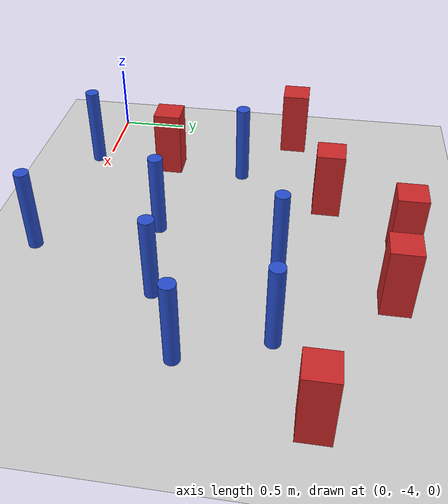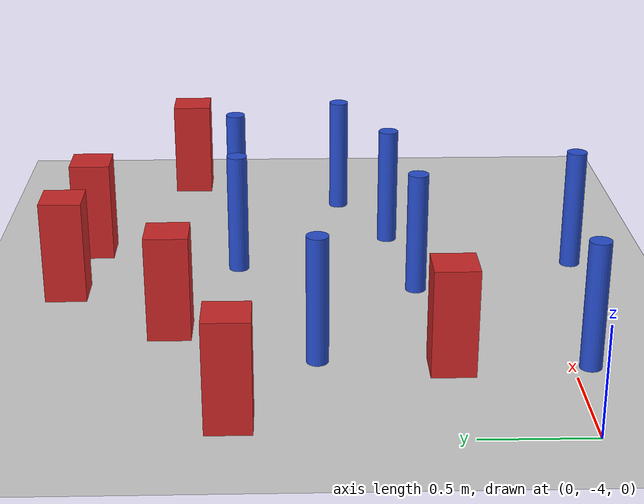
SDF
<sdf version="1.6">
 <world name="default">
  <model name="ground_plane">
   <static>1</static>
   <link name="link">
    <collision name="collision">
     <geometry><plane><normal>0 0 1</normal><size>100 100</size></plane></geometry>
     <surface><friction><ode><mu>100</mu><mu2>50</mu2></ode></friction></surface>
    </collision>
    <visual name="visual">
     <cast_shadows>0</cast_shadows>
     <geometry><plane><normal>0 0 1</normal><size>100 100</size></plane></geometry>
     <material>
      <ambient>1.0 1.0 1.0 1.0</ambient>
      <diffuse>0.8 0.8 0.8 1.0</diffuse>
      <specular>0.01 0.01 0.01 1.000000</specular>
     </material>
    </visual>
   </link>
  </model>
  <model name="square_post_obstacle2">
   <static>true</static>
   <pose>0.156342930012 -2.51117832905 -6.11067671241e-07 -5.50515727128e-06 -8.79689657224e-07 2.37013304536e-05</pose>
   <link name="link">
    <pose>0 0 0.25 0 -0 0</pose>
    <inertial>
     <mass>100</mass>
     <inertia>
      <ixx>0.166667</ixx>
      <ixy>0</ixy>
      <ixz>0</ixz>
      <iyy>0.166667</iyy>
      <iyz>0</iyz>
      <izz>0.166667</izz>
     </inertia>
    </inertial>
    <collision name="collision"><geometry><box><size>.2 .2 .5</size></box></geometry></collision>
    <visual name="visual">
     <geometry><box><size>.2 .2 .5</size></box></geometry>
     <material>
      <script><name>Gazebo/Red</name><uri>file://media/materials/scripts/gazebo.material</uri></script>
     </material>
    </visual>
   </link>
  </model>
  <model name="pole_obstacle8">
   <static>true</static>
   <pose>0.598691550622 -4.07649091872 -9.47619616065e-06 5.49618799737e-07 2.36310414065e-07 -1.55090534796e-07</pose>
   <link name="link">
    <pose>0 0 0.3 0 -0 0</pose>
    <inertial>
     <mass>1</mass>
     <inertia><ixx>0.145833</ixx><ixy>0</ixy><ixz>0</ixz><iyy>0.145833</iyy><iyz>0</iyz><izz>0.125</izz></inertia>
    </inertial>
    <collision name="collision">
     <geometry><cylinder><radius>0.05</radius><length>.6</length></cylinder></geometry>
    </collision>
    <visual name="visual">
     <geometry><cylinder><radius>0.05</radius><length>.6</length></cylinder></geometry>
     <material>
      <script><name>Gazebo/Blue</name><uri>file://media/materials/scripts/gazebo.material</uri></script>
     </material>
    </visual>
   </link>
  </model>
  <model name="pole_obstacle41">
   <static>true</static>
   <pose>0.684255084652 -2.88313401653 -9.47619616065e-06 5.49618799737e-07 2.36310414066e-07 -1.55090534797e-07</pose>
   <link name="link">
    <pose>0 0 0.3 0 -0 0</pose>
    <inertial>
     <mass>1</mass>
     <inertia><ixx>0.145833</ixx><ixy>0</ixy><ixz>0</ixz><iyy>0.145833</iyy><iyz>0</iyz><izz>0.125</izz></inertia>
    </inertial>
    <collision name="collision">
     <geometry><cylinder><radius>0.05</radius><length>.6</length></cylinder></geometry>
    </collision>
    <visual name="visual">
     <geometry><cylinder><radius>0.05</radius><length>.6</length></cylinder></geometry>
     <material>
      <script><name>Gazebo/Blue</name><uri>file://media/materials/scripts/gazebo.material</uri></script>
     </material>
    </visual>
   </link>
  </model>
  <model name="square_post_obstacle52">
   <static>true</static>
   <pose>2.908980832 -2.2231665737 -6.11067671241e-07 -5.50515727128e-06 -8.79689657224e-07 2.37013304536e-05</pose>
   <link name="link">
    <pose>0 0 0.25 0 -0 0</pose>
    <inertial>
     <mass>100</mass>
     <inertia>
      <ixx>0.166667</ixx>
      <ixy>0</ixy>
      <ixz>0</ixz>
      <iyy>0.166667</iyy>
      <iyz>0</iyz>
      <izz>0.166667</izz>
     </inertia>
    </inertial>
    <collision name="collision"><geometry><box><size>.2 .2 .5</size></box></geometry></collision>
    <visual name="visual">
     <geometry><box><size>.2 .2 .5</size></box></geometry>
     <material>
      <script><name>Gazebo/Red</name><uri>file://media/materials/scripts/gazebo.material</uri></script>
     </material>
    </visual>
   </link>
  </model>
  <model name="square_post_obstacle59">
   <static>true</static>
   <pose>0.615103116242 -3.46724367394 -6.11067671241e-07 -5.50515727128e-06 -8.79689657224e-07 2.37013304536e-05</pose>
   <link name="link">
    <pose>0 0 0.25 0 -0 0</pose>
    <inertial>
     <mass>100</mass>
     <inertia>
      <ixx>0.166667</ixx>
      <ixy>0</ixy>
      <ixz>0</ixz>
      <iyy>0.166667</iyy>
      <iyz>0</iyz>
      <izz>0.166667</izz>
     </inertia>
    </inertial>
    <collision name="collision"><geometry><box><size>.2 .2 .5</size></box></geometry></collision>
    <visual name="visual">
     <geometry><box><size>.2 .2 .5</size></box></geometry>
     <material>
      <script><name>Gazebo/Red</name><uri>file://media/materials/scripts/gazebo.material</uri></script>
     </material>
    </visual>
   </link>
  </model>
  <model name="pole_obstacle57">
   <static>true</static>
   <pose>1.43092163037 -3.38177642899 -9.47619616065e-06 5.49618799737e-07 2.36310414062e-07 -1.55090534798e-07</pose>
   <link name="link">
    <pose>0 0 0.3 0 -0 0</pose>
    <inertial>
     <mass>1</mass>
     <inertia><ixx>0.145833</ixx><ixy>0</ixy><ixz>0</ixz><iyy>0.145833</iyy><iyz>0</iyz><izz>0.125</izz></inertia>
    </inertial>
    <collision name="collision">
     <geometry><cylinder><radius>0.05</radius><length>.6</length></cylinder></geometry>
    </collision>
    <visual name="visual">
     <geometry><cylinder><radius>0.05</radius><length>.6</length></cylinder></geometry>
     <material>
      <script><name>Gazebo/Blue</name><uri>file://media/materials/scripts/gazebo.material</uri></script>
     </material>
    </visual>
   </link>
  </model>
  <model name="square_post_obstacle102">
   <static>true</static>
   <pose>1.4255975735 -1.68915910112 -6.11067671241e-07 -5.50515727128e-06 -8.79689657224e-07 2.37013304536e-05</pose>
   <link name="link">
    <pose>0 0 0.25 0 -0 0</pose>
    <inertial>
     <mass>100</mass>
     <inertia>
      <ixx>0.166667</ixx>
      <ixy>0</ixy>
      <ixz>0</ixz>
      <iyy>0.166667</iyy>
      <iyz>0</iyz>
      <izz>0.166667</izz>
     </inertia>
    </inertial>
    <collision name="collision"><geometry><box><size>.2 .2 .5</size></box></geometry></collision>
    <visual name="visual">
     <geometry><box><size>.2 .2 .5</size></box></geometry>
     <material>
      <script><name>Gazebo/Red</name><uri>file://media/materials/scripts/gazebo.material</uri></script>
     </material>
    </visual>
   </link>
  </model>
  <model name="pole_obstacle123">
   <static>true</static>
   <pose>2.369964714 -2.485853225 -9.47619616065e-06 5.49618799737e-07 2.36310414051e-07 -1.55090534807e-07</pose>
   <link name="link">
    <pose>0 0 0.3 0 -0 0</pose>
    <inertial>
     <mass>1</mass>
     <inertia><ixx>0.145833</ixx><ixy>0</ixy><ixz>0</ixz><iyy>0.145833</iyy><iyz>0</iyz><izz>0.125</izz></inertia>
    </inertial>
    <collision name="collision">
     <geometry><cylinder><radius>0.05</radius><length>.6</length></cylinder></geometry>
    </collision>
    <visual name="visual">
     <geometry><cylinder><radius>0.05</radius><length>.6</length></cylinder></geometry>
     <material>
      <script><name>Gazebo/Blue</name><uri>file://media/materials/scripts/gazebo.material</uri></script>
     </material>
    </visual>
   </link>
  </model>
  <model name="pole_obstacle128">
   <static>true</static>
   <pose>2.58022506488 -3.04610804222 -9.47619616065e-06 5.49618799737e-07 2.36310414051e-07 -1.55090534807e-07</pose>
   <link name="link">
    <pose>0 0 0.3 0 -0 0</pose>
    <inertial>
     <mass>1</mass>
     <inertia><ixx>0.145833</ixx><ixy>0</ixy><ixz>0</ixz><iyy>0.145833</iyy><iyz>0</iyz><izz>0.125</izz></inertia>
    </inertial>
    <collision name="collision">
     <geometry><cylinder><radius>0.05</radius><length>.6</length></cylinder></geometry>
    </collision>
    <visual name="visual">
     <geometry><cylinder><radius>0.05</radius><length>.6</length></cylinder></geometry>
     <material>
      <script><name>Gazebo/Blue</name><uri>file://media/materials/scripts/gazebo.material</uri></script>
     </material>
    </visual>
   </link>
  </model>
  <model name="pole_obstacle134">
   <static>true</static>
   <pose>1.72544713327 -4.19522933759 -9.47619616065e-06 5.49618799737e-07 2.36310414061e-07 -1.550905348e-07</pose>
   <link name="link">
    <pose>0 0 0.3 0 -0 0</pose>
    <inertial>
     <mass>1</mass>
     <inertia><ixx>0.145833</ixx><ixy>0</ixy><ixz>0</ixz><iyy>0.145833</iyy><iyz>0</iyz><izz>0.125</izz></inertia>
    </inertial>
    <collision name="collision">
     <geometry><cylinder><radius>0.05</radius><length>.6</length></cylinder></geometry>
    </collision>
    <visual name="visual">
     <geometry><cylinder><radius>0.05</radius><length>.6</length></cylinder></geometry>
     <material>
      <script><name>Gazebo/Blue</name><uri>file://media/materials/scripts/gazebo.material</uri></script>
     </material>
    </visual>
   </link>
  </model>
  <model name="pole_obstacle143">
   <static>true</static>
   <pose>1.70800473408 -2.51095901934 -9.47619616065e-06 5.49618799737e-07 2.36310414062e-07 -1.55090534798e-07</pose>
   <link name="link">
    <pose>0 0 0.3 0 -0 0</pose>
    <inertial>
     <mass>1</mass>
     <inertia><ixx>0.145833</ixx><ixy>0</ixy><ixz>0</ixz><iyy>0.145833</iyy><iyz>0</iyz><izz>0.125</izz></inertia>
    </inertial>
    <collision name="collision">
     <geometry><cylinder><radius>0.05</radius><length>.6</length></cylinder></geometry>
    </collision>
    <visual name="visual">
     <geometry><cylinder><radius>0.05</radius><length>.6</length></cylinder></geometry>
     <material>
      <script><name>Gazebo/Blue</name><uri>file://media/materials/scripts/gazebo.material</uri></script>
     </material>
    </visual>
   </link>
  </model>
  <model name="square_post_obstacle147">
   <static>true</static>
   <pose>1.94663490491 -1.7636382688 -6.11067671241e-07 -5.50515727128e-06 -8.79689657224e-07 2.37013304536e-05</pose>
   <link name="link">
    <pose>0 0 0.25 0 -0 0</pose>
    <inertial>
     <mass>100</mass>
     <inertia>
      <ixx>0.166667</ixx>
      <ixy>0</ixy>
      <ixz>0</ixz>
      <iyy>0.166667</iyy>
      <iyz>0</iyz>
      <izz>0.166667</izz>
     </inertia>
    </inertial>
    <collision name="collision"><geometry><box><size>.2 .2 .5</size></box></geometry></collision>
    <visual name="visual">
     <geometry><box><size>.2 .2 .5</size></box></geometry>
     <material>
      <script><name>Gazebo/Red</name><uri>file://media/materials/scripts/gazebo.material</uri></script>
     </material>
    </visual>
   </link>
  </model>
  <model name="square_post_obstacle176">
   <static>true</static>
   <pose>0.997359104206 -2.2160615599 -6.11067671241e-07 -5.50515727128e-06 -8.79689657224e-07 2.37013304536e-05</pose>
   <link name="link">
    <pose>0 0 0.25 0 -0 0</pose>
    <inertial>
     <mass>100</mass>
     <inertia>
      <ixx>0.166667</ixx>
      <ixy>0</ixy>
      <ixz>0</ixz>
      <iyy>0.166667</iyy>
      <iyz>0</iyz>
      <izz>0.166667</izz>
     </inertia>
    </inertial>
    <collision name="collision"><geometry><box><size>.2 .2 .5</size></box></geometry></collision>
    <visual name="visual">
     <geometry><box><size>.2 .2 .5</size></box></geometry>
     <material>
      <script><name>Gazebo/Red</name><uri>file://media/materials/scripts/gazebo.material</uri></script>
     </material>
    </visual>
   </link>
  </model>
  <model name="pole_obstacle211">
   <static>true</static>
   <pose>2.07706244471 -3.28385809401 -9.47619616065e-06 5.49618799737e-07 2.36310414051e-07 -1.55090534807e-07</pose>
   <link name="link">
    <pose>0 0 0.3 0 -0 0</pose>
    <inertial>
     <mass>1</mass>
     <inertia><ixx>0.145833</ixx><ixy>0</ixy><ixz>0</ixz><iyy>0.145833</iyy><iyz>0</iyz><izz>0.125</izz></inertia>
    </inertial>
    <collision name="collision">
     <geometry><cylinder><radius>0.05</radius><length>.6</length></cylinder></geometry>
    </collision>
    <visual name="visual">
     <geometry><cylinder><radius>0.05</radius><length>.6</length></cylinder></geometry>
     <material>
      <script><name>Gazebo/Blue</name><uri>file://media/materials/scripts/gazebo.material</uri></script>
     </material>
    </visual>
   </link>
  </model>
 </world>
</sdf>
